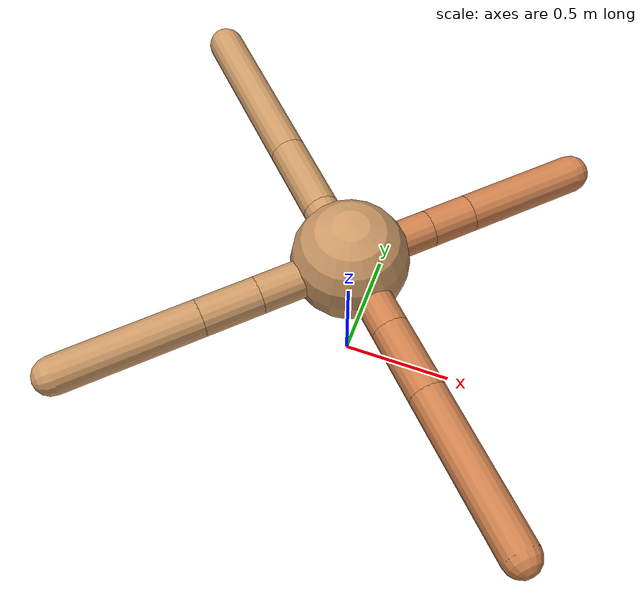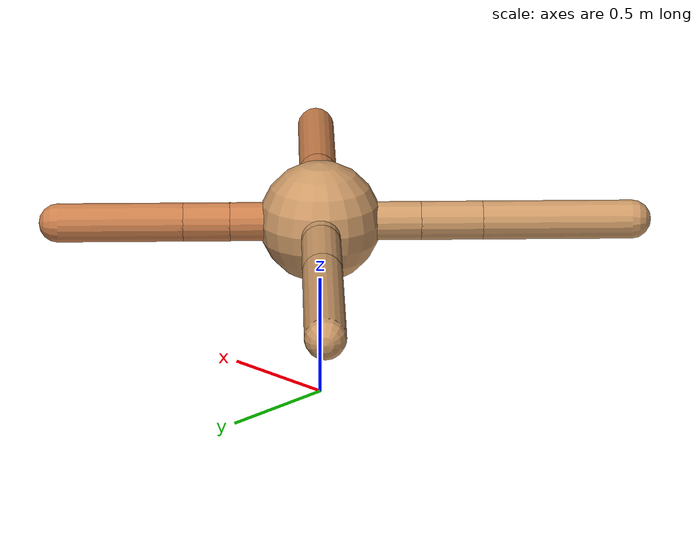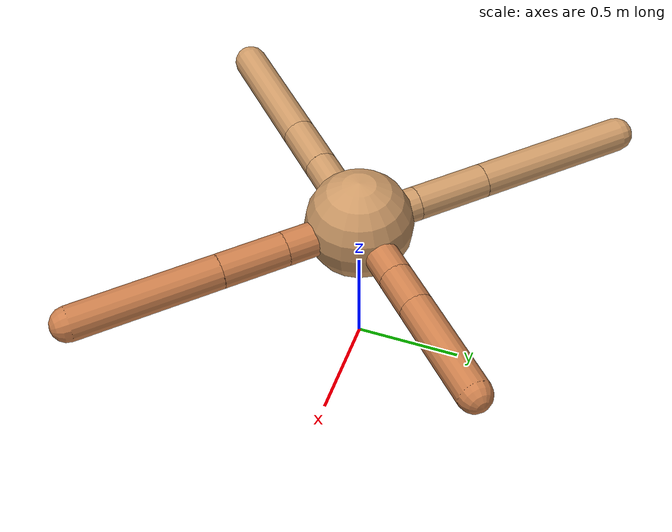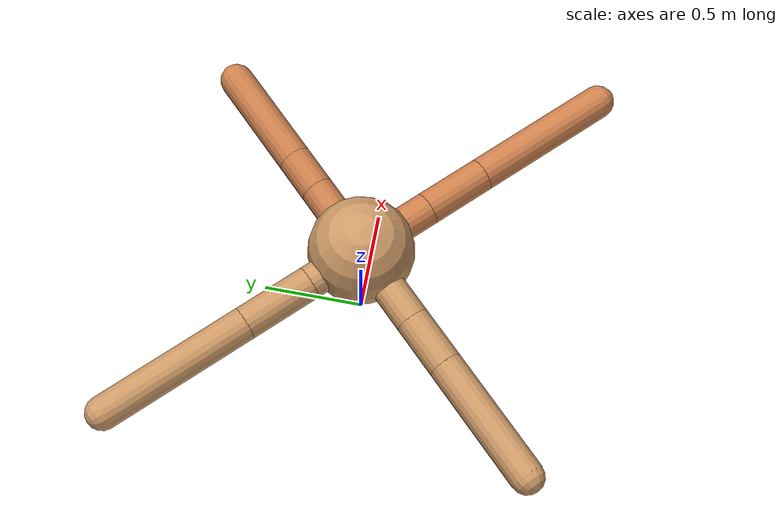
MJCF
<mujoco model="ant">
  <compiler angle="degree" coordinate="local" inertiafromgeom="true" />
  <option integrator="RK4" timestep="0.01" />
  <custom>
    <numeric data="0.0 0.0 0.55 1.0 0.0 0.0 0.0 0.0 1.0 0.0 -1.0 0.0 -1.0 0.0 1.0" name="init_qpos" />
  </custom>
  <default>
    <joint armature="1" damping="1" limited="true" />
    <geom conaffinity="0" condim="3" density="5.0" friction="1.5 0.1 0.1" margin="0.01" rgba="0.8 0.6 0.4 1" />
  </default>
  <worldbody>
    <body name="torso" pos="0 0 0.75">
      <geom name="torso_geom" pos="0 0 0" size="0.25" type="sphere" />

      <body name="front_left_leg" pos="0 0 0">
        <geom fromto="0.0 0.0 0.0 0.2606787851608782 0.2606787851608782 0.0" name="aux_1_geom" size="0.08" type="capsule" rgba=".8 .5 .3 1" />
        <body name="aux_1" pos="0.2606787851608782 0.2606787851608782 0.0">
          <joint axis="0 0 1" name="hip_1" pos="0.0 0.0 0.0" range="-40 40" type="hinge" />
          <geom fromto="0.0 0.0 0.0 0.1357653451390329 0.1357653451390329 0.0" name="left_leg_geom" size="0.08" type="capsule" rgba=".8 .5 .3 1" />
          <body pos="0.1357653451390329 0.1357653451390329 0.0" name="front_left_foot">
            <joint axis="-1 1 0" name="ankle_1" pos="0.0 0.0 0.0" range="30 100" type="hinge" />
            <geom fromto="0.0 0.0 0.0 0.3614434081647626 0.3614434081647626 0.0" name="left_ankle_geom" size="0.08" type="capsule" rgba=".8 .5 .3 1" />
          </body>
        </body>
      </body>
      <body name="front_right_leg" pos="0 0 0">
        <geom fromto="0.0 0.0 0.0 -0.2035009015835343 0.2035009015835343 0.0" name="aux_2_geom" size="0.08" type="capsule" />
        <body name="aux_2" pos="-0.2035009015835343 0.2035009015835343 0.0">
          <joint axis="0 0 1" name="hip_2" pos="0.0 0.0 0.0" range="-40 40" type="hinge" />
          <geom fromto="0.0 0.0 0.0 -0.24567345731514614 0.24567345731514614 0.0" name="right_leg_geom" size="0.08" type="capsule" />
          <body pos="-0.24567345731514614 0.24567345731514614 0.0" name="front_right_foot">
            <joint axis="1 1 0" name="ankle_2" pos="0.0 0.0 0.0" range="-100 -30" type="hinge" />
            <geom fromto="0.0 0.0 0.0 -0.5242003414471741 0.5242003414471741 0.0" name="right_ankle_geom" size="0.08" type="capsule" />
          </body>
        </body>
      </body>
      <body name="left_back_leg" pos="0 0 0">
        <geom fromto="0.0 0.0 0.0 -0.2921858033103612 -0.2921858033103612 0.0" name="aux_3_geom" size="0.08" type="capsule" />
        <body name="aux_3" pos="-0.2921858033103612 -0.2921858033103612 0.0">
          <joint axis="0 0 1" name="hip_3" pos="0.0 0.0 0.0" range="-40 40" type="hinge" />
          <geom fromto="0.0 0.0 0.0 -0.17903452257498076 -0.17903452257498076 0.0" name="back_leg_geom" size="0.08" type="capsule" />
          <body pos="-0.17903452257498076 -0.17903452257498076 0.0" name="left_back_foot">
            <joint axis="-1 1 0" name="ankle_3" pos="0.0 0.0 0.0" range="-100 -30" type="hinge" />
            <geom fromto="0.0 0.0 0.0 -0.43314861515186814 -0.43314861515186814 0.0" name="third_ankle_geom" size="0.08" type="capsule" />
          </body>
        </body>
      </body>
      <body name="right_back_leg" pos="0 0 0">
        <geom fromto="0.0 0.0 0.0 0.2623051065078354 -0.2623051065078354 0.0" name="aux_4_geom" size="0.08" type="capsule" rgba=".8 .5 .3 1" />
        <body name="aux_4" pos="0.2623051065078354 -0.2623051065078354 0.0">
          <joint axis="0 0 1" name="hip_4" pos="0.0 0.0 0.0" range="-40 40" type="hinge" />
          <geom fromto="0.0 0.0 0.0 0.21976822597166235 -0.21976822597166235 0.0" name="rightback_leg_geom" size="0.08" type="capsule" rgba=".8 .5 .3 1" />
          <body pos="0.21976822597166235 -0.21976822597166235 0.0" name="right_back_foot">
            <joint axis="1 1 0" name="ankle_4" pos="0.0 0.0 0.0" range="30 100" type="hinge" />
            <geom fromto="0.0 0.0 0.0 0.486968306359932 -0.486968306359932 0.0" name="fourth_ankle_geom" size="0.08" type="capsule" rgba=".8 .5 .3 1" />
          </body>
        </body>
      </body>
    </body>
  </worldbody>
  <actuator>
    <motor ctrllimited="true" ctrlrange="-1.0 1.0" joint="hip_4" gear="150" />
    <motor ctrllimited="true" ctrlrange="-1.0 1.0" joint="ankle_4" gear="150" />
    <motor ctrllimited="true" ctrlrange="-1.0 1.0" joint="hip_1" gear="150" />
    <motor ctrllimited="true" ctrlrange="-1.0 1.0" joint="ankle_1" gear="150" />
    <motor ctrllimited="true" ctrlrange="-1.0 1.0" joint="hip_2" gear="150" />
    <motor ctrllimited="true" ctrlrange="-1.0 1.0" joint="ankle_2" gear="150" />
    <motor ctrllimited="true" ctrlrange="-1.0 1.0" joint="hip_3" gear="150" />
    <motor ctrllimited="true" ctrlrange="-1.0 1.0" joint="ankle_3" gear="150" />
  </actuator>
</mujoco>
